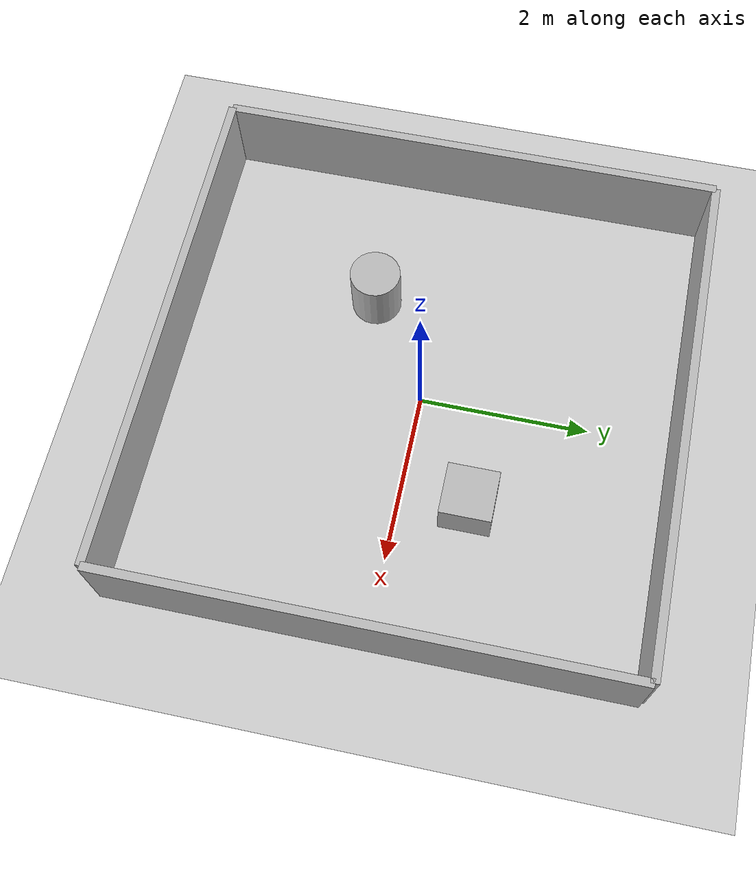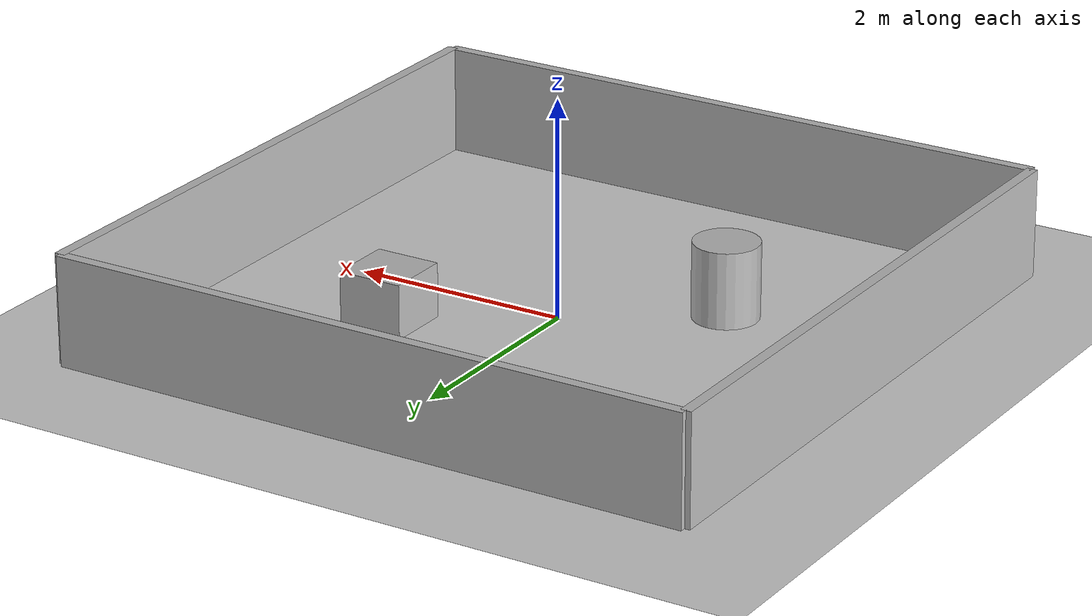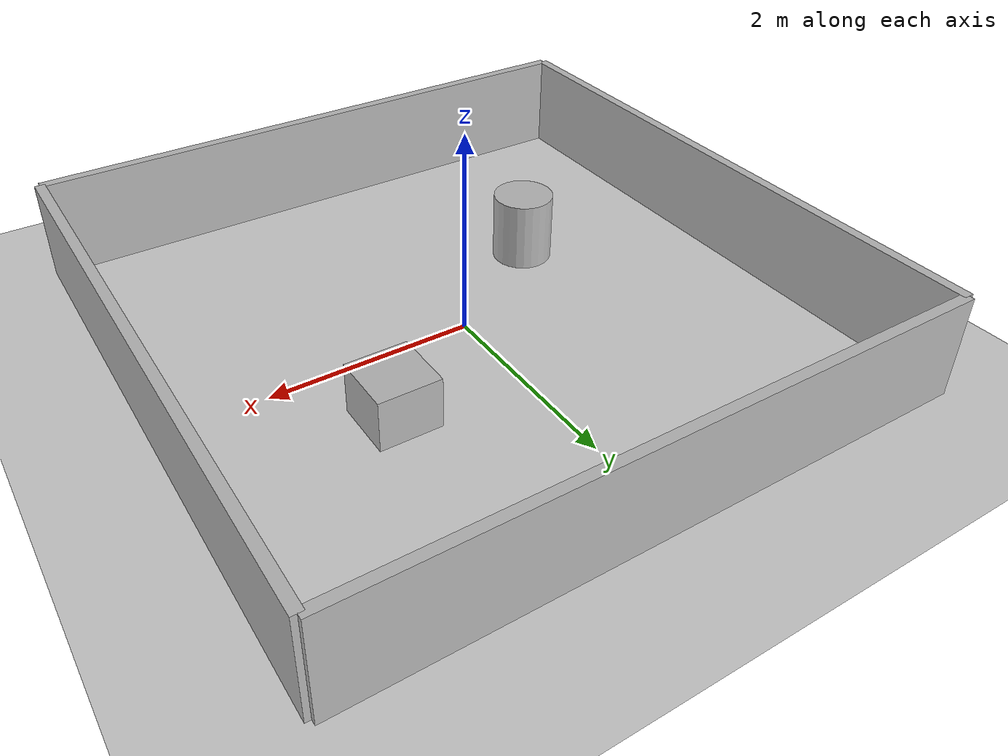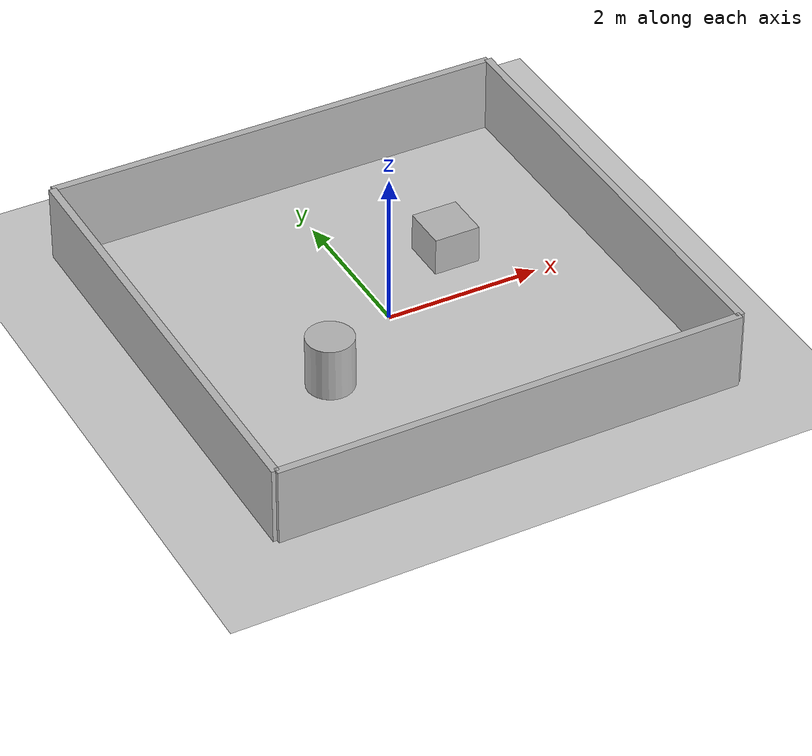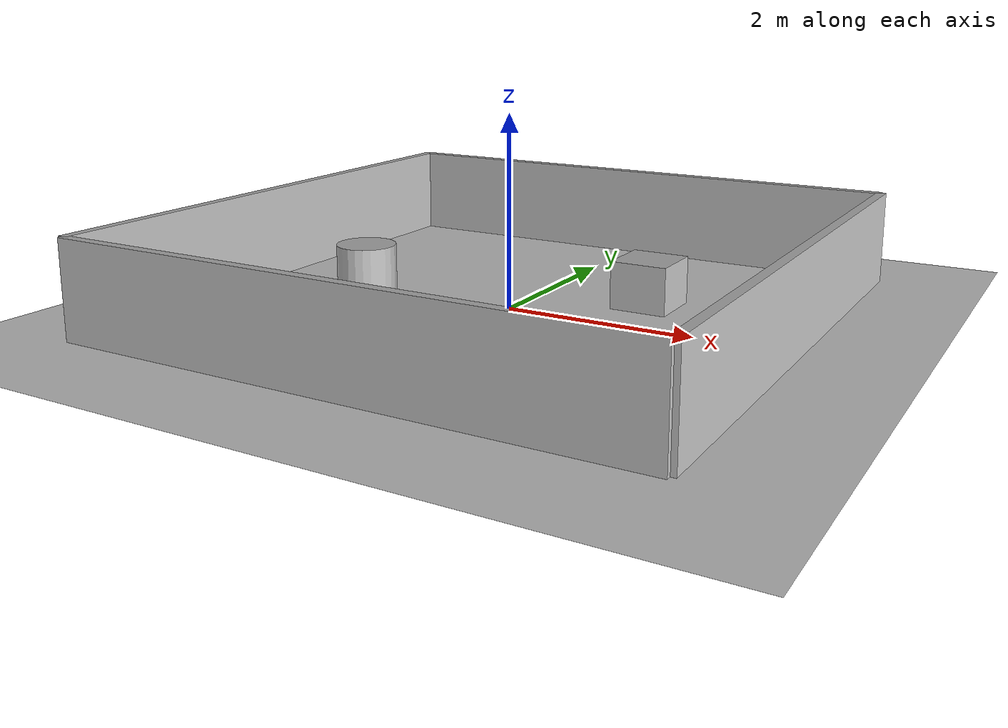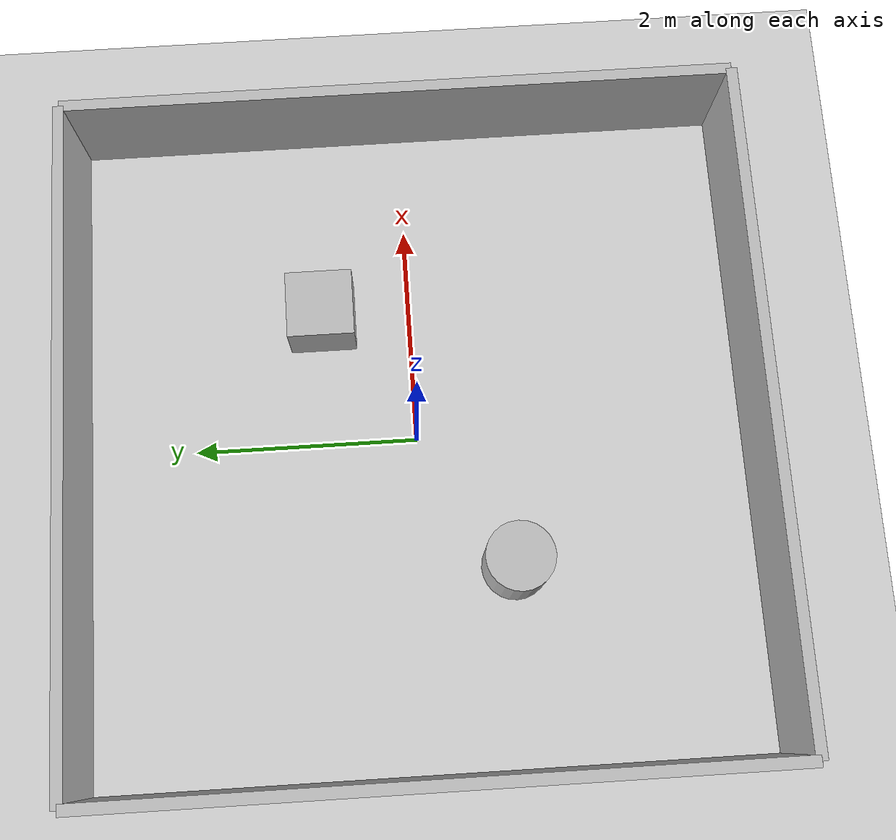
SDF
<?xml version="1.0" ?>
<sdf version="1.6">
  <world name="amr_test_world">
    <physics name="default_physics" type="ode">
      <real_time_update_rate>1000.0</real_time_update_rate>
      <max_step_size>0.001</max_step_size>
    </physics>

    <include>
      <uri>model://sun</uri>
    </include>
    <include>
      <uri>model://ground_plane</uri>
    </include>

    <model name="wall_north">
      <static>true</static>
      <pose>0 3 0.5 0 0 0</pose>
      <link name="link">
        <collision name="collision"><geometry><box><size>6 0.1 1</size></box></geometry></collision>
        <visual name="visual"><geometry><box><size>6 0.1 1</size></box></geometry></visual>
      </link>
    </model>
    <model name="wall_south">
      <static>true</static>
      <pose>0 -3 0.5 0 0 0</pose>
      <link name="link">
        <collision name="collision"><geometry><box><size>6 0.1 1</size></box></geometry></collision>
        <visual name="visual"><geometry><box><size>6 0.1 1</size></box></geometry></visual>
      </link>
    </model>
    <model name="wall_east">
      <static>true</static>
      <pose>3 0 0.5 0 0 0</pose>
      <link name="link">
        <collision name="collision"><geometry><box><size>0.1 6 1</size></box></geometry></collision>
        <visual name="visual"><geometry><box><size>0.1 6 1</size></box></geometry></visual>
      </link>
    </model>
    <model name="wall_west">
      <static>true</static>
      <pose>-3 0 0.5 0 0 0</pose>
      <link name="link">
        <collision name="collision"><geometry><box><size>0.1 6 1</size></box></geometry></collision>
        <visual name="visual"><geometry><box><size>0.1 6 1</size></box></geometry></visual>
      </link>
    </model>

    <model name="obstacle_box">
      <static>true</static>
      <pose>1.2 0.8 0.25 0 0 0</pose>
      <link name="link">
        <collision name="collision"><geometry><box><size>0.6 0.6 0.5</size></box></geometry></collision>
        <visual name="visual"><geometry><box><size>0.6 0.6 0.5</size></box></geometry></visual>
      </link>
    </model>

    <model name="obstacle_cylinder">
      <static>true</static>
      <pose>-1.2 -0.8 0.35 0 0 0</pose>
      <link name="link">
        <collision name="collision"><geometry><cylinder><radius>0.3</radius><length>0.7</length></cylinder></geometry></collision>
        <visual name="visual"><geometry><cylinder><radius>0.3</radius><length>0.7</length></cylinder></geometry></visual>
      </link>
    </model>
  </world>
</sdf>
